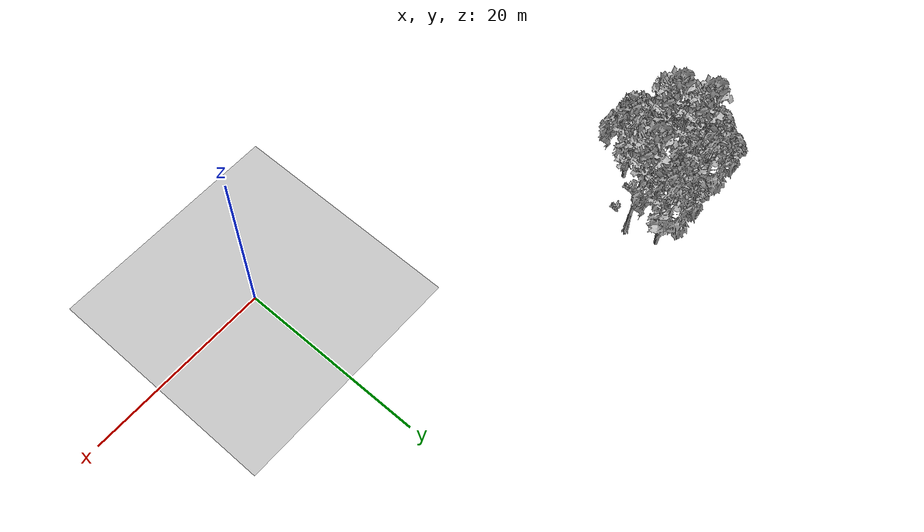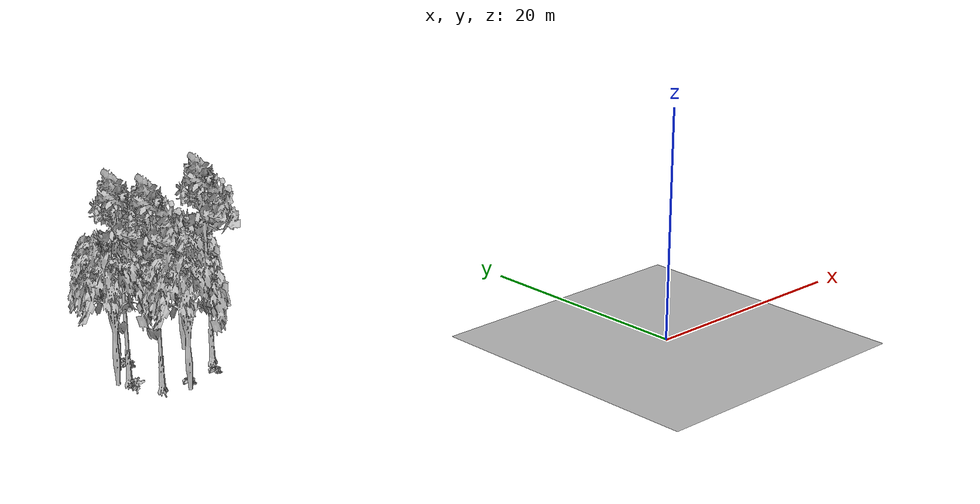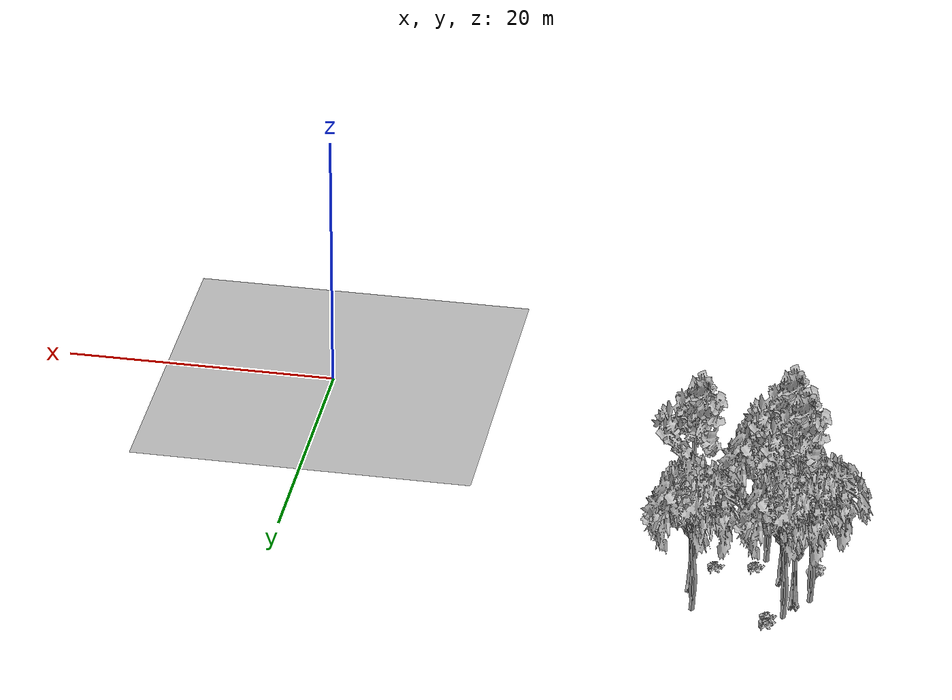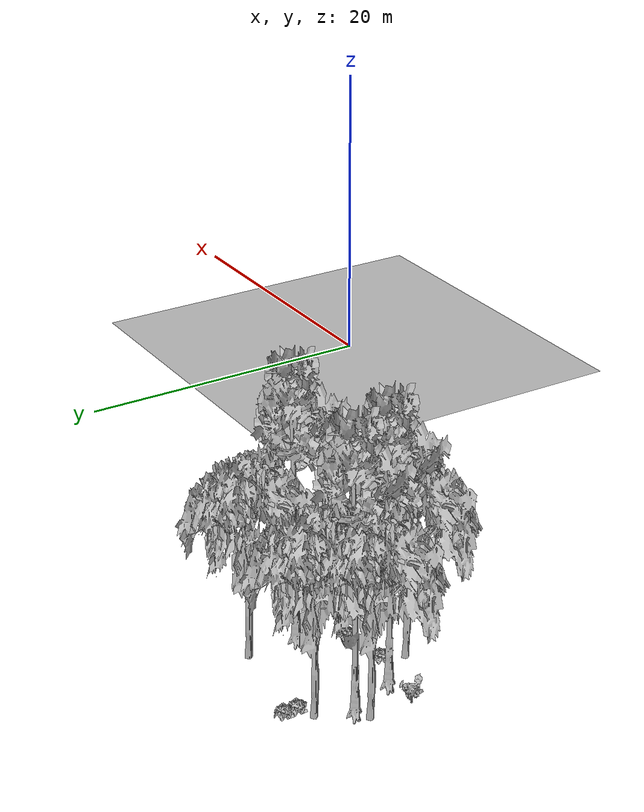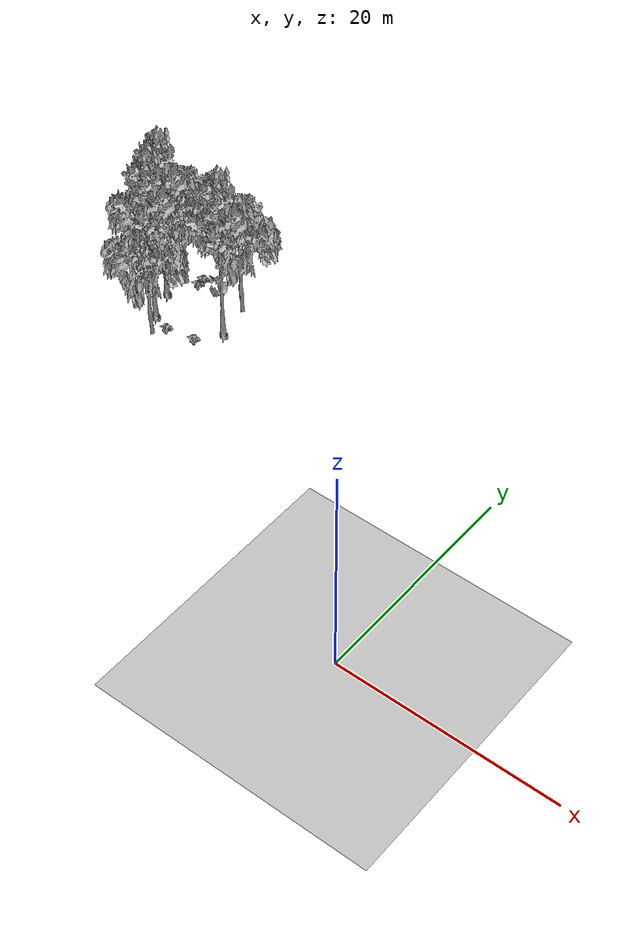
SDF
<sdf version="1.7">
 <world name="default">
  <model name="ground_plane">
   <static>1</static>
   <link name="link">
    <collision name="collision">
     <pose>-50 0 0 0 -0 0</pose>
     <geometry><plane><normal>0 0 1</normal><size>80 80</size></plane></geometry>
     <surface><contact><ode><min_depth>0.01</min_depth><max_vel>0</max_vel></ode></contact></surface>
    </collision>
    <visual name="grass">
     <cast_shadows>0</cast_shadows>
     <geometry>
      <mesh>
       <scale>0.46714285714285714 0.46714285714285714 0.1</scale>
       <uri>file://grass_plane/meshes/grass_plane.dae</uri>
      </mesh>
     </geometry>
    </visual>
   </link>
  </model>
  <model name="Tree 33">
   <static>1</static>
   <pose>-38.66646587660139 23.002870839316962 0 1.57079 -0 0</pose>
   <link name="link">
    <collision name="collision">
     <geometry><mesh><scale>3.5 5 3.5</scale><uri>model://tree_2/meshes/tree_2.obj</uri></mesh></geometry>
    </collision>
    <visual name="visual">
     <geometry><mesh><scale>3.5 5 3.5</scale><uri>model://tree_2/meshes/tree_2.obj</uri></mesh></geometry>
    </visual>
   </link>
  </model>
  <model name="Tree 154">
   <static>1</static>
   <pose>-37.43423181546162 23.204916393609842 0 1.57079 -0 0</pose>
   <link name="link">
    <collision name="collision">
     <geometry><mesh><scale>3.5 5 3.5</scale><uri>model://tree_9/meshes/tree_9.obj</uri></mesh></geometry>
    </collision>
    <visual name="visual">
     <geometry><mesh><scale>3.5 5 3.5</scale><uri>model://tree_9/meshes/tree_9.obj</uri></mesh></geometry>
    </visual>
   </link>
  </model>
  <model name="Tree 174">
   <static>1</static>
   <pose>-34.98343371734907 18.429502022141016 0 1.57079 -0 0</pose>
   <link name="link">
    <collision name="collision">
     <geometry><mesh><scale>3.5 5 3.5</scale><uri>model://tree_2/meshes/tree_2.obj</uri></mesh></geometry>
    </collision>
    <visual name="visual">
     <geometry><mesh><scale>3.5 5 3.5</scale><uri>model://tree_2/meshes/tree_2.obj</uri></mesh></geometry>
    </visual>
   </link>
  </model>
  <model name="Tree 179">
   <static>1</static>
   <pose>-37.07569466156906 25.3312345398771 0 1.57079 -0 0</pose>
   <link name="link">
    <collision name="collision">
     <geometry><mesh><scale>3.5 5 3.5</scale><uri>model://tree_2/meshes/tree_2.obj</uri></mesh></geometry>
    </collision>
    <visual name="visual">
     <geometry><mesh><scale>3.5 5 3.5</scale><uri>model://tree_2/meshes/tree_2.obj</uri></mesh></geometry>
    </visual>
   </link>
  </model>
  <model name="Tree 272">
   <static>1</static>
   <pose>-30.057863468699086 22.29482325070515 0 1.57079 -0 0</pose>
   <link name="link">
    <collision name="collision">
     <geometry><mesh><scale>3.5 5 3.5</scale><uri>model://tree_9/meshes/tree_9.obj</uri></mesh></geometry>
    </collision>
    <visual name="visual">
     <geometry><mesh><scale>3.5 5 3.5</scale><uri>model://tree_9/meshes/tree_9.obj</uri></mesh></geometry>
    </visual>
   </link>
  </model>
  <model name="Tree 339">
   <static>1</static>
   <pose>-36.22080192532232 20.372366417631753 0 1.57079 -0 0</pose>
   <link name="link">
    <collision name="collision">
     <geometry><mesh><scale>3.5 5 3.5</scale><uri>model://tree_9/meshes/tree_9.obj</uri></mesh></geometry>
    </collision>
    <visual name="visual">
     <geometry><mesh><scale>3.5 5 3.5</scale><uri>model://tree_9/meshes/tree_9.obj</uri></mesh></geometry>
    </visual>
   </link>
  </model>
  <model name="Tree 392">
   <static>1</static>
   <pose>-30.683000490051633 25.490399284221596 0 1.57079 -0 0</pose>
   <link name="link">
    <collision name="collision">
     <geometry><mesh><scale>3.5 5 3.5</scale><uri>model://tree_2/meshes/tree_2.obj</uri></mesh></geometry>
    </collision>
    <visual name="visual">
     <geometry><mesh><scale>3.5 5 3.5</scale><uri>model://tree_2/meshes/tree_2.obj</uri></mesh></geometry>
    </visual>
   </link>
  </model>
  <model name="Bush 21">
   <static>1</static>
   <pose>-38.49450678810816 20.498305792140485 0 1.57079 -0 0</pose>
   <link name="link">
    <collision name="collision">
     <geometry><mesh><scale>2 2 2</scale><uri>model://bush_0/meshes/bush_0.obj</uri></mesh></geometry>
     <surface><contact><collide_without_contact>false</collide_without_contact></contact></surface>
    </collision>
    <visual name="visual">
     <geometry><mesh><scale>2 2 2</scale><uri>model://bush_0/meshes/bush_0.obj</uri></mesh></geometry>
    </visual>
   </link>
  </model>
  <model name="Bush 303">
   <static>1</static>
   <pose>-35.9470223490095 26.432135264530302 0 1.57079 -0 0</pose>
   <link name="link">
    <collision name="collision">
     <geometry><mesh><scale>2 2 2</scale><uri>model://bush_2/meshes/bush_2.obj</uri></mesh></geometry>
     <surface><contact><collide_without_contact>false</collide_without_contact></contact></surface>
    </collision>
    <visual name="visual">
     <geometry><mesh><scale>2 2 2</scale><uri>model://bush_2/meshes/bush_2.obj</uri></mesh></geometry>
    </visual>
   </link>
  </model>
  <model name="Bush 316">
   <static>1</static>
   <pose>-34.264096837258606 19.54007567143819 0 1.57079 -0 0</pose>
   <link name="link">
    <collision name="collision">
     <geometry><mesh><scale>2 2 2</scale><uri>model://bush_2/meshes/bush_2.obj</uri></mesh></geometry>
     <surface><contact><collide_without_contact>false</collide_without_contact></contact></surface>
    </collision>
    <visual name="visual">
     <geometry><mesh><scale>2 2 2</scale><uri>model://bush_2/meshes/bush_2.obj</uri></mesh></geometry>
    </visual>
   </link>
  </model>
  <model name="Bush 395">
   <static>1</static>
   <pose>-35.92040512350441 25.639488569013338 0 1.57079 -0 0</pose>
   <link name="link">
    <collision name="collision">
     <geometry><mesh><scale>2 2 2</scale><uri>model://bush_2/meshes/bush_2.obj</uri></mesh></geometry>
     <surface><contact><collide_without_contact>false</collide_without_contact></contact></surface>
    </collision>
    <visual name="visual">
     <geometry><mesh><scale>2 2 2</scale><uri>model://bush_2/meshes/bush_2.obj</uri></mesh></geometry>
    </visual>
   </link>
  </model>
  <model name="Bush 573">
   <static>1</static>
   <pose>-31.4722126822494 19.9820268774683 0 1.57079 -0 0</pose>
   <link name="link">
    <collision name="collision">
     <geometry><mesh><scale>2 2 2</scale><uri>model://bush_2/meshes/bush_2.obj</uri></mesh></geometry>
     <surface><contact><collide_without_contact>false</collide_without_contact></contact></surface>
    </collision>
    <visual name="visual">
     <geometry><mesh><scale>2 2 2</scale><uri>model://bush_2/meshes/bush_2.obj</uri></mesh></geometry>
    </visual>
   </link>
  </model>
 </world>
</sdf>
